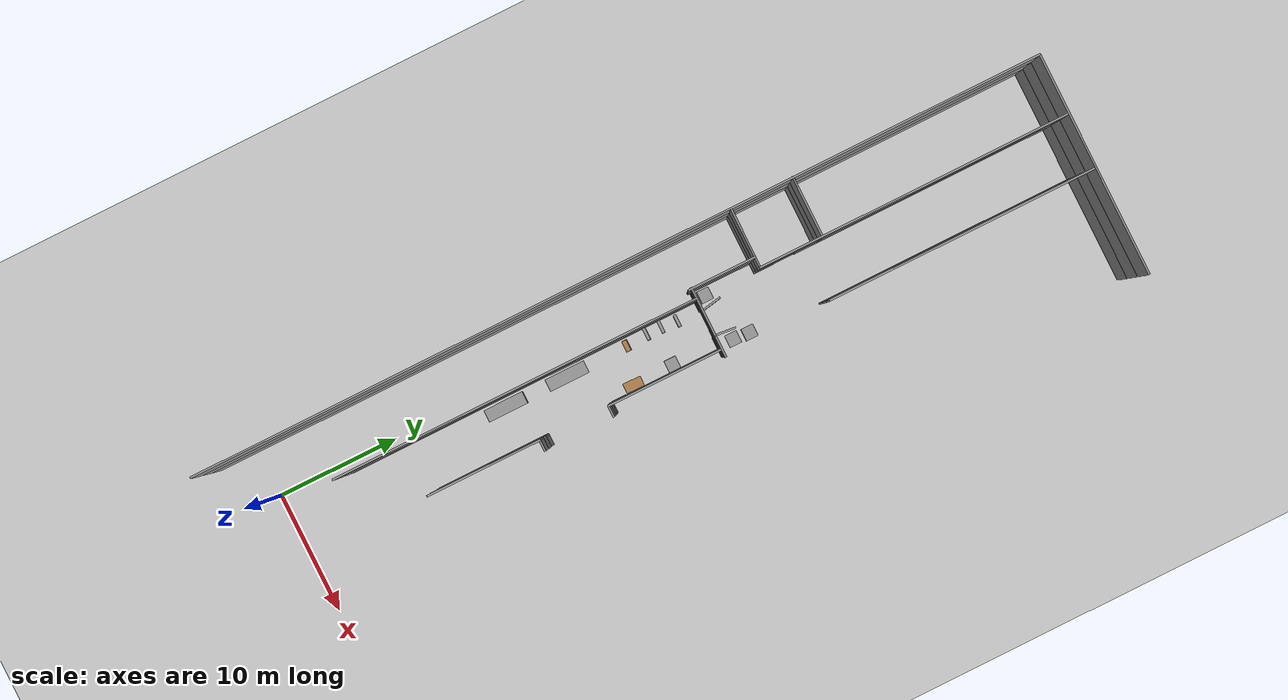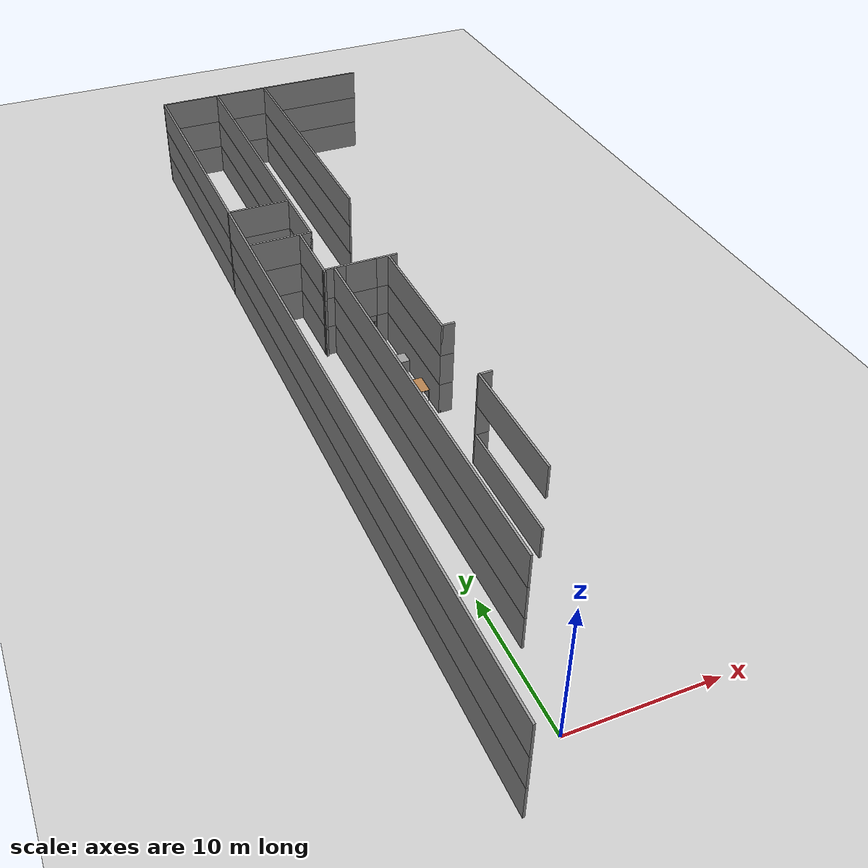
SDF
<sdf version="1.7">
 <world name="default">
  <model name="ground_plane">
   <pose>30 30 0 0 -0 0</pose>
   <static>1</static>
   <link name="link">
    <collision name="collision">
     <geometry><plane><normal>0 0 1</normal><size>100 100</size></plane></geometry>
     <surface><friction><ode><mu>100</mu><mu2>50</mu2></ode></friction></surface>
    </collision>
    <visual name="visual">
     <cast_shadows>0</cast_shadows>
     <geometry><plane><normal>0 0 1</normal><size>100 100</size></plane></geometry>
     <material>
      <script><uri>file://media/materials/scripts/gazebo.material</uri><name>Gazebo/Grey</name></script>
     </material>
    </visual>
   </link>
  </model>
  <model name="Soterrani_AT">
   <pose>30.7763 24.7178 0 0 0 -1.57187</pose>
   <link name="Wall_1">
    <collision name="Wall_1_Collision">
     <geometry><box><size>69.25 0.15 2.5</size></box></geometry>
     <pose>0 0 1.25 0 -0 0</pose>
    </collision>
    <visual name="Wall_1_Visual">
     <pose>0 0 1.25 0 -0 0</pose>
     <geometry><box><size>69.25 0.15 2.5</size></box></geometry>
     <material>
      <script><uri>file://media/materials/scripts/gazebo.material</uri><name>Gazebo/Grey</name></script>
      <ambient>1 1 1 1</ambient>
     </material>
     <meta><layer>0</layer></meta>
    </visual>
    <pose>-6.55126 -34.6495 0 0 -0 3.14159</pose>
   </link>
   <link name="Wall_11">
    <collision name="Wall_11_Collision">
     <geometry><box><size>1 0.15 2.5</size></box></geometry>
     <pose>0 0 1.25 0 -0 0</pose>
    </collision>
    <visual name="Wall_11_Visual">
     <pose>0 0 1.25 0 -0 0</pose>
     <geometry><box><size>1 0.15 2.5</size></box></geometry>
     <material>
      <script><uri>file://media/materials/scripts/gazebo.material</uri><name>Gazebo/Grey</name></script>
      <ambient>1 1 1 1</ambient>
     </material>
     <meta><layer>0</layer></meta>
    </visual>
    <pose>4.04874 -25.3245 0 0 -0 1.5708</pose>
   </link>
   <link name="Wall_13">
    <collision name="Wall_13_Collision">
     <geometry><box><size>1 0.15 2.5</size></box></geometry>
     <pose>0 0 1.25 0 -0 0</pose>
    </collision>
    <visual name="Wall_13_Visual">
     <pose>0 0 1.25 0 -0 0</pose>
     <geometry><box><size>1 0.15 2.5</size></box></geometry>
     <material>
      <script><uri>file://media/materials/scripts/gazebo.material</uri><name>Gazebo/Grey</name></script>
      <ambient>1 1 1 1</ambient>
     </material>
     <meta><layer>0</layer></meta>
    </visual>
    <pose>-1.55126 -25.3245 0 0 -0 -1.5708</pose>
   </link>
   <link name="Wall_14">
    <collision name="Wall_14_Collision">
     <geometry><box><size>9.25 0.15 2.5</size></box></geometry>
     <pose>0 0 1.25 0 -0 0</pose>
    </collision>
    <visual name="Wall_14_Visual">
     <pose>0 0 1.25 0 -0 0</pose>
     <geometry><box><size>9.25 0.15 2.5</size></box></geometry>
     <material>
      <script><uri>file://media/materials/scripts/gazebo.material</uri><name>Gazebo/Grey</name></script>
      <ambient>1 1 1 1</ambient>
     </material>
     <meta><layer>0</layer></meta>
    </visual>
    <pose>-6.10126 -25.7495 0 0 -0 3.14159</pose>
   </link>
   <link name="Wall_149">
    <collision name="Wall_149_Collision">
     <geometry><box><size>69.25 0.15 2.5</size></box></geometry>
     <pose>0 0 1.25 0 -0 0</pose>
    </collision>
    <visual name="Wall_149_Visual">
     <pose>0 0 1.25 0 -0 0</pose>
     <geometry><box><size>69.25 0.15 2.5</size></box></geometry>
     <material>
      <script><uri>file://media/materials/scripts/gazebo.material</uri><name>Gazebo/Grey</name></script>
      <ambient>1 1 1 1</ambient>
     </material>
     <meta><layer>1</layer></meta>
    </visual>
    <pose>-6.55126 -34.6495 2.5 0 -0 3.14159</pose>
   </link>
   <link name="Wall_150">
    <collision name="Wall_150_Collision">
     <geometry><box><size>18 0.15 2.5</size></box></geometry>
     <pose>0 0 1.25 0 -0 0</pose>
    </collision>
    <visual name="Wall_150_Visual">
     <pose>0 0 1.25 0 -0 0</pose>
     <geometry><box><size>18 0.15 2.5</size></box></geometry>
     <material>
      <script><uri>file://media/materials/scripts/gazebo.material</uri><name>Gazebo/Grey</name></script>
      <ambient>1 1 1 1</ambient>
     </material>
     <meta><layer>1</layer></meta>
    </visual>
    <pose>-41.1013 -25.7245 2.5 0 -0 1.5708</pose>
   </link>
   <link name="Wall_156">
    <collision name="Wall_156_Collision">
     <geometry><box><size>1 0.15 2.5</size></box></geometry>
     <pose>0 0 1.25 0 -0 0</pose>
    </collision>
    <visual name="Wall_156_Visual">
     <pose>0 0 1.25 0 -0 0</pose>
     <geometry><box><size>1 0.15 2.5</size></box></geometry>
     <material>
      <script><uri>file://media/materials/scripts/gazebo.material</uri><name>Gazebo/Grey</name></script>
      <ambient>1 1 1 1</ambient>
     </material>
     <meta><layer>1</layer></meta>
    </visual>
    <pose>4.04874 -25.3245 2.5 0 -0 1.5708</pose>
   </link>
   <link name="Wall_158">
    <collision name="Wall_158_Collision">
     <geometry><box><size>1 0.15 2.5</size></box></geometry>
     <pose>0 0 1.25 0 -0 0</pose>
    </collision>
    <visual name="Wall_158_Visual">
     <pose>0 0 1.25 0 -0 0</pose>
     <geometry><box><size>1 0.15 2.5</size></box></geometry>
     <material>
      <script><uri>file://media/materials/scripts/gazebo.material</uri><name>Gazebo/Grey</name></script>
      <ambient>1 1 1 1</ambient>
     </material>
     <meta><layer>1</layer></meta>
    </visual>
    <pose>-1.55126 -25.3245 2.5 0 -0 -1.5708</pose>
   </link>
   <link name="Wall_159">
    <collision name="Wall_159_Collision">
     <geometry><box><size>9.25 0.15 2.5</size></box></geometry>
     <pose>0 0 1.25 0 -0 0</pose>
    </collision>
    <visual name="Wall_159_Visual">
     <pose>0 0 1.25 0 -0 0</pose>
     <geometry><box><size>9.25 0.15 2.5</size></box></geometry>
     <material>
      <script><uri>file://media/materials/scripts/gazebo.material</uri><name>Gazebo/Grey</name></script>
      <ambient>1 1 1 1</ambient>
     </material>
     <meta><layer>1</layer></meta>
    </visual>
    <pose>-6.10126 -25.7495 2.5 0 -0 3.14159</pose>
   </link>
   <link name="Wall_166">
    <collision name="Wall_166_Collision">
     <geometry><box><size>21.75 0.15 2.5</size></box></geometry>
     <pose>0 0 1.25 0 -0 0</pose>
    </collision>
    <visual name="Wall_166_Visual">
     <pose>0 0 1.25 0 -0 0</pose>
     <geometry><box><size>21.75 0.15 2.5</size></box></geometry>
     <material>
      <script><uri>file://media/materials/scripts/gazebo.material</uri><name>Gazebo/Grey</name></script>
      <ambient>1 1 1 1</ambient>
     </material>
     <meta><layer>1</layer></meta>
    </visual>
    <pose>-30.2847 -25.4328 2.5 0 -0 3.14159</pose>
   </link>
   <link name="Wall_167">
    <collision name="Wall_167_Collision">
     <geometry><box><size>25.25 0.15 2.5</size></box></geometry>
     <pose>0 0 1.25 0 -0 0</pose>
    </collision>
    <visual name="Wall_167_Visual">
     <pose>0 0 1.25 0 -0 0</pose>
     <geometry><box><size>25.25 0.15 2.5</size></box></geometry>
     <material>
      <script><uri>file://media/materials/scripts/gazebo.material</uri><name>Gazebo/Grey</name></script>
      <ambient>1 1 1 1</ambient>
     </material>
     <meta><layer>1</layer></meta>
    </visual>
    <pose>-28.4987 -29.8428 2.5 0 -0 0</pose>
   </link>
   <link name="Wall_168">
    <collision name="Wall_168_Collision">
     <geometry><box><size>1 0.15 2.5</size></box></geometry>
     <pose>0 0 1.25 0 -0 0</pose>
    </collision>
    <visual name="Wall_168_Visual">
     <pose>0 0 1.25 0 -0 0</pose>
     <geometry><box><size>1 0.15 2.5</size></box></geometry>
     <material>
      <script><uri>file://media/materials/scripts/gazebo.material</uri><name>Gazebo/Grey</name></script>
      <ambient>1 1 1 1</ambient>
     </material>
     <meta><layer>1</layer></meta>
    </visual>
    <pose>-15.9487 -30.2678 2.5 0 -0 -1.5708</pose>
   </link>
   <link name="Wall_169">
    <collision name="Wall_169_Collision">
     <geometry><box><size>5.5 0.15 2.5</size></box></geometry>
     <pose>0 0 1.25 0 -0 0</pose>
    </collision>
    <visual name="Wall_169_Visual">
     <pose>0 0 1.25 0 -0 0</pose>
     <geometry><box><size>5.5 0.15 2.5</size></box></geometry>
     <material>
      <script><uri>file://media/materials/scripts/gazebo.material</uri><name>Gazebo/Grey</name></script>
      <ambient>1 1 1 1</ambient>
     </material>
     <meta><layer>1</layer></meta>
    </visual>
    <pose>-13.2737 -30.6928 2.5 0 -0 0</pose>
   </link>
   <link name="Wall_170">
    <collision name="Wall_170_Collision">
     <geometry><box><size>1.75 0.15 2.5</size></box></geometry>
     <pose>0 0 1.25 0 -0 0</pose>
    </collision>
    <visual name="Wall_170_Visual">
     <pose>0 0 1.25 0 -0 0</pose>
     <geometry><box><size>1.75 0.15 2.5</size></box></geometry>
     <material>
      <script><uri>file://media/materials/scripts/gazebo.material</uri><name>Gazebo/Grey</name></script>
      <ambient>1 1 1 1</ambient>
     </material>
     <meta><layer>1</layer></meta>
    </visual>
    <pose>-10.8066 -25.9699 2.5 0 -0 -1.5708</pose>
   </link>
   <link name="Wall_171">
    <collision name="Wall_171_Collision">
     <geometry><box><size>2.5 0.15 2.5</size></box></geometry>
     <pose>0 0 1.25 0 -0 0</pose>
    </collision>
    <visual name="Wall_171_Visual">
     <pose>0 0 1.25 0 -0 0</pose>
     <geometry><box><size>2.5 0.15 2.5</size></box></geometry>
     <material>
      <script><uri>file://media/materials/scripts/gazebo.material</uri><name>Gazebo/Grey</name></script>
      <ambient>1 1 1 1</ambient>
     </material>
     <meta><layer>1</layer></meta>
    </visual>
    <pose>-10.8066 -27.9449 2.5 0 -0 -1.5708</pose>
   </link>
   <link name="Wall_172">
    <collision name="Wall_172_Collision">
     <geometry><box><size>1.75 0.15 2.5</size></box></geometry>
     <pose>0 0 1.25 0 -0 0</pose>
    </collision>
    <visual name="Wall_172_Visual">
     <pose>0 0 1.25 0 -0 0</pose>
     <geometry><box><size>1.75 0.15 2.5</size></box></geometry>
     <material>
      <script><uri>file://media/materials/scripts/gazebo.material</uri><name>Gazebo/Grey</name></script>
      <ambient>1 1 1 1</ambient>
     </material>
     <meta><layer>1</layer></meta>
    </visual>
    <pose>-10.8066 -29.9199 2.5 0 -0 -1.5708</pose>
   </link>
   <link name="Wall_173">
    <collision name="Wall_173_Collision">
     <geometry><box><size>29.75 0.15 2.5</size></box></geometry>
     <pose>0 0 1.25 0 -0 0</pose>
    </collision>
    <visual name="Wall_173_Visual">
     <pose>0 0 1.25 0 -0 0</pose>
     <geometry><box><size>29.75 0.15 2.5</size></box></geometry>
     <material>
      <script><uri>file://media/materials/scripts/gazebo.material</uri><name>Gazebo/Grey</name></script>
      <ambient>1 1 1 1</ambient>
     </material>
     <meta><layer>1</layer></meta>
    </visual>
    <pose>3.99345 -29.8968 2.5 0 -0 0</pose>
   </link>
   <link name="Wall_180">
    <collision name="Wall_180_Collision">
     <geometry><box><size>5 0.15 2.5</size></box></geometry>
     <pose>0 0 1.25 0 -0 0</pose>
    </collision>
    <visual name="Wall_180_Visual">
     <pose>0 0 1.25 0 -0 0</pose>
     <geometry><box><size>5 0.15 2.5</size></box></geometry>
     <material>
      <script><uri>file://media/materials/scripts/gazebo.material</uri><name>Gazebo/Grey</name></script>
      <ambient>1 1 1 1</ambient>
     </material>
     <meta><layer>1</layer></meta>
    </visual>
    <pose>-21.0234 -32.245 2.5 0 -0 -1.5708</pose>
   </link>
   <link name="Wall_181">
    <collision name="Wall_181_Collision">
     <geometry><box><size>4 0.15 2.5</size></box></geometry>
     <pose>0 0 1.25 0 -0 0</pose>
    </collision>
    <visual name="Wall_181_Visual">
     <pose>0 0 1.25 0 -0 0</pose>
     <geometry><box><size>4 0.15 2.5</size></box></geometry>
     <material>
      <script><uri>file://media/materials/scripts/gazebo.material</uri><name>Gazebo/Grey</name></script>
      <ambient>1 1 1 1</ambient>
     </material>
     <meta><layer>1</layer></meta>
    </visual>
    <pose>-15.9487 -32.6178 2.5 0 -0 -1.5708</pose>
   </link>
   <link name="Wall_2">
    <collision name="Wall_2_Collision">
     <geometry><box><size>18 0.15 2.5</size></box></geometry>
     <pose>0 0 1.25 0 -0 0</pose>
    </collision>
    <visual name="Wall_2_Visual">
     <pose>0 0 1.25 0 -0 0</pose>
     <geometry><box><size>18 0.15 2.5</size></box></geometry>
     <material>
      <script><uri>file://media/materials/scripts/gazebo.material</uri><name>Gazebo/Grey</name></script>
      <ambient>1 1 1 1</ambient>
     </material>
     <meta><layer>0</layer></meta>
    </visual>
    <pose>-41.1013 -25.7245 0 0 -0 1.5708</pose>
   </link>
   <link name="Wall_220">
    <collision name="Wall_220_Collision">
     <geometry><box><size>69.25 0.15 2.5</size></box></geometry>
     <pose>0 0 1.25 0 -0 0</pose>
    </collision>
    <visual name="Wall_220_Visual">
     <pose>0 0 1.25 0 -0 0</pose>
     <geometry><box><size>69.25 0.15 2.5</size></box></geometry>
     <material>
      <script><uri>file://media/materials/scripts/gazebo.material</uri><name>Gazebo/Grey</name></script>
      <ambient>1 1 1 1</ambient>
     </material>
     <meta><layer>2</layer></meta>
    </visual>
    <pose>-6.55126 -34.6495 5 0 -0 3.14159</pose>
   </link>
   <link name="Wall_221">
    <collision name="Wall_221_Collision">
     <geometry><box><size>18 0.15 2.5</size></box></geometry>
     <pose>0 0 1.25 0 -0 0</pose>
    </collision>
    <visual name="Wall_221_Visual">
     <pose>0 0 1.25 0 -0 0</pose>
     <geometry><box><size>18 0.15 2.5</size></box></geometry>
     <material>
      <script><uri>file://media/materials/scripts/gazebo.material</uri><name>Gazebo/Grey</name></script>
      <ambient>1 1 1 1</ambient>
     </material>
     <meta><layer>2</layer></meta>
    </visual>
    <pose>-41.1013 -25.7245 5 0 -0 1.5708</pose>
   </link>
   <link name="Wall_226">
    <collision name="Wall_226_Collision">
     <geometry><box><size>9.25 0.15 2.5</size></box></geometry>
     <pose>0 0 1.25 0 -0 0</pose>
    </collision>
    <visual name="Wall_226_Visual">
     <pose>0 0 1.25 0 -0 0</pose>
     <geometry><box><size>9.25 0.15 2.5</size></box></geometry>
     <material>
      <script><uri>file://media/materials/scripts/gazebo.material</uri><name>Gazebo/Grey</name></script>
      <ambient>1 1 1 1</ambient>
     </material>
     <meta><layer>2</layer></meta>
    </visual>
    <pose>8.59874 -25.7495 5 0 -0 3.14159</pose>
   </link>
   <link name="Wall_227">
    <collision name="Wall_227_Collision">
     <geometry><box><size>1 0.15 2.5</size></box></geometry>
     <pose>0 0 1.25 0 -0 0</pose>
    </collision>
    <visual name="Wall_227_Visual">
     <pose>0 0 1.25 0 -0 0</pose>
     <geometry><box><size>1 0.15 2.5</size></box></geometry>
     <material>
      <script><uri>file://media/materials/scripts/gazebo.material</uri><name>Gazebo/Grey</name></script>
      <ambient>1 1 1 1</ambient>
     </material>
     <meta><layer>2</layer></meta>
    </visual>
    <pose>4.04874 -25.3245 5 0 -0 1.5708</pose>
   </link>
   <link name="Wall_229">
    <collision name="Wall_229_Collision">
     <geometry><box><size>1 0.15 2.5</size></box></geometry>
     <pose>0 0 1.25 0 -0 0</pose>
    </collision>
    <visual name="Wall_229_Visual">
     <pose>0 0 1.25 0 -0 0</pose>
     <geometry><box><size>1 0.15 2.5</size></box></geometry>
     <material>
      <script><uri>file://media/materials/scripts/gazebo.material</uri><name>Gazebo/Grey</name></script>
      <ambient>1 1 1 1</ambient>
     </material>
     <meta><layer>2</layer></meta>
    </visual>
    <pose>-1.55126 -25.3245 5 0 -0 -1.5708</pose>
   </link>
   <link name="Wall_230">
    <collision name="Wall_230_Collision">
     <geometry><box><size>9.25 0.15 2.5</size></box></geometry>
     <pose>0 0 1.25 0 -0 0</pose>
    </collision>
    <visual name="Wall_230_Visual">
     <pose>0 0 1.25 0 -0 0</pose>
     <geometry><box><size>9.25 0.15 2.5</size></box></geometry>
     <material>
      <script><uri>file://media/materials/scripts/gazebo.material</uri><name>Gazebo/Grey</name></script>
      <ambient>1 1 1 1</ambient>
     </material>
     <meta><layer>2</layer></meta>
    </visual>
    <pose>-6.10126 -25.7495 5 0 -0 3.14159</pose>
   </link>
   <link name="Wall_237">
    <collision name="Wall_237_Collision">
     <geometry><box><size>21.75 0.15 2.5</size></box></geometry>
     <pose>0 0 1.25 0 -0 0</pose>
    </collision>
    <visual name="Wall_237_Visual">
     <pose>0 0 1.25 0 -0 0</pose>
     <geometry><box><size>21.75 0.15 2.5</size></box></geometry>
     <material>
      <script><uri>file://media/materials/scripts/gazebo.material</uri><name>Gazebo/Grey</name></script>
      <ambient>1 1 1 1</ambient>
     </material>
     <meta><layer>2</layer></meta>
    </visual>
    <pose>-30.2847 -25.4328 5 0 -0 3.14159</pose>
   </link>
   <link name="Wall_238">
    <collision name="Wall_238_Collision">
     <geometry><box><size>25.25 0.15 2.5</size></box></geometry>
     <pose>0 0 1.25 0 -0 0</pose>
    </collision>
    <visual name="Wall_238_Visual">
     <pose>0 0 1.25 0 -0 0</pose>
     <geometry><box><size>25.25 0.15 2.5</size></box></geometry>
     <material>
      <script><uri>file://media/materials/scripts/gazebo.material</uri><name>Gazebo/Grey</name></script>
      <ambient>1 1 1 1</ambient>
     </material>
     <meta><layer>2</layer></meta>
    </visual>
    <pose>-28.4987 -29.8428 5 0 -0 0</pose>
   </link>
   <link name="Wall_239">
    <collision name="Wall_239_Collision">
     <geometry><box><size>1 0.15 2.5</size></box></geometry>
     <pose>0 0 1.25 0 -0 0</pose>
    </collision>
    <visual name="Wall_239_Visual">
     <pose>0 0 1.25 0 -0 0</pose>
     <geometry><box><size>1 0.15 2.5</size></box></geometry>
     <material>
      <script><uri>file://media/materials/scripts/gazebo.material</uri><name>Gazebo/Grey</name></script>
      <ambient>1 1 1 1</ambient>
     </material>
     <meta><layer>2</layer></meta>
    </visual>
    <pose>-15.9487 -30.2678 5 0 -0 -1.5708</pose>
   </link>
   <link name="Wall_24">
    <collision name="Wall_24_Collision">
     <geometry><box><size>21.75 0.15 2.5</size></box></geometry>
     <pose>0 0 1.25 0 -0 0</pose>
    </collision>
    <visual name="Wall_24_Visual">
     <pose>0 0 1.25 0 -0 0</pose>
     <geometry><box><size>21.75 0.15 2.5</size></box></geometry>
     <material>
      <script><uri>file://media/materials/scripts/gazebo.material</uri><name>Gazebo/Grey</name></script>
      <ambient>1 1 1 1</ambient>
     </material>
     <meta><layer>0</layer></meta>
    </visual>
    <pose>-30.2847 -25.4328 0 0 -0 3.14159</pose>
   </link>
   <link name="Wall_240">
    <collision name="Wall_240_Collision">
     <geometry><box><size>5.5 0.15 2.5</size></box></geometry>
     <pose>0 0 1.25 0 -0 0</pose>
    </collision>
    <visual name="Wall_240_Visual">
     <pose>0 0 1.25 0 -0 0</pose>
     <geometry><box><size>5.5 0.15 2.5</size></box></geometry>
     <material>
      <script><uri>file://media/materials/scripts/gazebo.material</uri><name>Gazebo/Grey</name></script>
      <ambient>1 1 1 1</ambient>
     </material>
     <meta><layer>2</layer></meta>
    </visual>
    <pose>-13.2737 -30.6928 5 0 -0 0</pose>
   </link>
   <link name="Wall_241">
    <collision name="Wall_241_Collision">
     <geometry><box><size>1.75 0.15 2.5</size></box></geometry>
     <pose>0 0 1.25 0 -0 0</pose>
    </collision>
    <visual name="Wall_241_Visual">
     <pose>0 0 1.25 0 -0 0</pose>
     <geometry><box><size>1.75 0.15 2.5</size></box></geometry>
     <material>
      <script><uri>file://media/materials/scripts/gazebo.material</uri><name>Gazebo/Grey</name></script>
      <ambient>1 1 1 1</ambient>
     </material>
     <meta><layer>2</layer></meta>
    </visual>
    <pose>-10.8066 -25.9699 5 0 -0 -1.5708</pose>
   </link>
   <link name="Wall_242">
    <collision name="Wall_242_Collision">
     <geometry><box><size>2.5 0.15 2.5</size></box></geometry>
     <pose>0 0 1.25 0 -0 0</pose>
    </collision>
    <visual name="Wall_242_Visual">
     <pose>0 0 1.25 0 -0 0</pose>
     <geometry><box><size>2.5 0.15 2.5</size></box></geometry>
     <material>
      <script><uri>file://media/materials/scripts/gazebo.material</uri><name>Gazebo/Grey</name></script>
      <ambient>1 1 1 1</ambient>
     </material>
     <meta><layer>2</layer></meta>
    </visual>
    <pose>-10.8066 -27.9449 5 0 -0 -1.5708</pose>
   </link>
   <link name="Wall_243">
    <collision name="Wall_243_Collision">
     <geometry><box><size>1.75 0.15 2.5</size></box></geometry>
     <pose>0 0 1.25 0 -0 0</pose>
    </collision>
    <visual name="Wall_243_Visual">
     <pose>0 0 1.25 0 -0 0</pose>
     <geometry><box><size>1.75 0.15 2.5</size></box></geometry>
     <material>
      <script><uri>file://media/materials/scripts/gazebo.material</uri><name>Gazebo/Grey</name></script>
      <ambient>1 1 1 1</ambient>
     </material>
     <meta><layer>2</layer></meta>
    </visual>
    <pose>-10.8066 -29.9199 5 0 -0 -1.5708</pose>
   </link>
   <link name="Wall_244">
    <collision name="Wall_244_Collision">
     <geometry><box><size>29.75 0.15 2.5</size></box></geometry>
     <pose>0 0 1.25 0 -0 0</pose>
    </collision>
    <visual name="Wall_244_Visual">
     <pose>0 0 1.25 0 -0 0</pose>
     <geometry><box><size>29.75 0.15 2.5</size></box></geometry>
     <material>
      <script><uri>file://media/materials/scripts/gazebo.material</uri><name>Gazebo/Grey</name></script>
      <ambient>1 1 1 1</ambient>
     </material>
     <meta><layer>2</layer></meta>
    </visual>
    <pose>3.99345 -29.8968 5 0 -0 0</pose>
   </link>
   <link name="Wall_250">
    <collision name="Wall_250_Collision">
     <geometry><box><size>5 0.15 2.5</size></box></geometry>
     <pose>0 0 1.25 0 -0 0</pose>
    </collision>
    <visual name="Wall_250_Visual">
     <pose>0 0 1.25 0 -0 0</pose>
     <geometry><box><size>5 0.15 2.5</size></box></geometry>
     <material>
      <script><uri>file://media/materials/scripts/gazebo.material</uri><name>Gazebo/Grey</name></script>
      <ambient>1 1 1 1</ambient>
     </material>
     <meta><layer>2</layer></meta>
    </visual>
    <pose>-21.0234 -32.245 5 0 -0 -1.5708</pose>
   </link>
   <link name="Wall_251">
    <collision name="Wall_251_Collision">
     <geometry><box><size>4 0.15 2.5</size></box></geometry>
     <pose>0 0 1.25 0 -0 0</pose>
    </collision>
    <visual name="Wall_251_Visual">
     <pose>0 0 1.25 0 -0 0</pose>
     <geometry><box><size>4 0.15 2.5</size></box></geometry>
     <material>
      <script><uri>file://media/materials/scripts/gazebo.material</uri><name>Gazebo/Grey</name></script>
      <ambient>1 1 1 1</ambient>
     </material>
     <meta><layer>2</layer></meta>
    </visual>
    <pose>-15.9487 -32.6178 5 0 -0 -1.5708</pose>
   </link>
   <link name="Wall_26">
    <pose>-28.4987 -29.8428 0 0 -0 0</pose>
    <visual name="Wall_26_Visual_0">
     <pose>-1.71901 0 1.25 0 -0 0</pose>
     <geometry><box><size>21.812 0.15 2.5</size></box></geometry>
     <material>
      <script><uri>file://media/materials/scripts/gazebo.material</uri><name>Gazebo/Grey</name></script>
      <ambient>1 1 1 1</ambient>
     </material>
     <meta><layer>0</layer></meta>
    </visual>
    <collision name="Wall_26_Collision_0">
     <geometry><box><size>21.812 0.15 2.5</size></box></geometry>
     <pose>-1.71901 0 1.25 0 -0 0</pose>
    </collision>
    <visual name="Wall_26_Visual_1">
     <pose>11.806 0 1.25 0 -0 0</pose>
     <geometry><box><size>1.63803 0.15 2.5</size></box></geometry>
     <material>
      <script><uri>file://media/materials/scripts/gazebo.material</uri><name>Gazebo/Grey</name></script>
      <ambient>1 1 1 1</ambient>
     </material>
     <meta><layer>0</layer></meta>
    </visual>
    <collision name="Wall_26_Collision_1">
     <geometry><box><size>1.63803 0.15 2.5</size></box></geometry>
     <pose>11.806 0 1.25 0 -0 0</pose>
    </collision>
    <visual name="Wall_26_Visual_2">
     <pose>10.087 0 2.25 0 -0 0</pose>
     <geometry><box><size>1.8 0.15 0.5</size></box></geometry>
     <material>
      <script><uri>file://media/materials/scripts/gazebo.material</uri><name>Gazebo/Grey</name></script>
      <ambient>1 1 1 1</ambient>
     </material>
     <meta><layer>0</layer></meta>
    </visual>
    <collision name="Wall_26_Collision_2">
     <geometry><box><size>1.8 0.15 0.5</size></box></geometry>
     <pose>10.087 0 2.25 0 -0 0</pose>
    </collision>
   </link>
   <link name="Wall_27">
    <collision name="Wall_27_Collision">
     <geometry><box><size>1 0.15 2.5</size></box></geometry>
     <pose>0 0 1.25 0 -0 0</pose>
    </collision>
    <visual name="Wall_27_Visual">
     <pose>0 0 1.25 0 -0 0</pose>
     <geometry><box><size>1 0.15 2.5</size></box></geometry>
     <material>
      <script><uri>file://media/materials/scripts/gazebo.material</uri><name>Gazebo/Grey</name></script>
      <ambient>1 1 1 1</ambient>
     </material>
     <meta><layer>0</layer></meta>
    </visual>
    <pose>-15.9487 -30.2678 0 0 -0 -1.5708</pose>
   </link>
   <link name="Wall_28">
    <collision name="Wall_28_Collision">
     <geometry><box><size>5.5 0.15 2.5</size></box></geometry>
     <pose>0 0 1.25 0 -0 0</pose>
    </collision>
    <visual name="Wall_28_Visual">
     <pose>0 0 1.25 0 -0 0</pose>
     <geometry><box><size>5.5 0.15 2.5</size></box></geometry>
     <material>
      <script><uri>file://media/materials/scripts/gazebo.material</uri><name>Gazebo/Grey</name></script>
      <ambient>1 1 1 1</ambient>
     </material>
     <meta><layer>0</layer></meta>
    </visual>
    <pose>-13.2737 -30.6928 0 0 -0 0</pose>
   </link>
   <link name="Wall_30">
    <collision name="Wall_30_Collision">
     <geometry><box><size>1.75 0.15 2.5</size></box></geometry>
     <pose>0 0 1.25 0 -0 0</pose>
    </collision>
    <visual name="Wall_30_Visual">
     <pose>0 0 1.25 0 -0 0</pose>
     <geometry><box><size>1.75 0.15 2.5</size></box></geometry>
     <material>
      <script><uri>file://media/materials/scripts/gazebo.material</uri><name>Gazebo/Grey</name></script>
      <ambient>1 1 1 1</ambient>
     </material>
     <meta><layer>0</layer></meta>
    </visual>
    <pose>-10.8066 -25.9699 0 0 -0 -1.5708</pose>
   </link>
   <link name="Wall_31">
    <pose>-10.8066 -27.9449 0 0 -0 -1.5708</pose>
    <visual name="Wall_31_Visual_0">
     <pose>-1.21908 0 1.25 0 -0 0</pose>
     <geometry><box><size>0.061834 0.15 2.5</size></box></geometry>
     <material>
      <script><uri>file://media/materials/scripts/gazebo.material</uri><name>Gazebo/Grey</name></script>
      <ambient>1 1 1 1</ambient>
     </material>
     <meta><layer>0</layer></meta>
    </visual>
    <collision name="Wall_31_Collision_0">
     <geometry><box><size>0.061834 0.15 2.5</size></box></geometry>
     <pose>-1.21908 0 1.25 0 -0 0</pose>
    </collision>
    <visual name="Wall_31_Visual_1">
     <pose>1.15559 0 1.25 0 -0 0</pose>
     <geometry><box><size>0.188829 0.15 2.5</size></box></geometry>
     <material>
      <script><uri>file://media/materials/scripts/gazebo.material</uri><name>Gazebo/Grey</name></script>
      <ambient>1 1 1 1</ambient>
     </material>
     <meta><layer>0</layer></meta>
    </visual>
    <collision name="Wall_31_Collision_1">
     <geometry><box><size>0.188829 0.15 2.5</size></box></geometry>
     <pose>1.15559 0 1.25 0 -0 0</pose>
    </collision>
    <visual name="Wall_31_Visual_2">
     <pose>-0.063498 0 2.25 0 -0 0</pose>
     <geometry><box><size>2.24934 0.15 0.5</size></box></geometry>
     <material>
      <script><uri>file://media/materials/scripts/gazebo.material</uri><name>Gazebo/Grey</name></script>
      <ambient>1 1 1 1</ambient>
     </material>
     <meta><layer>0</layer></meta>
    </visual>
    <collision name="Wall_31_Collision_2">
     <geometry><box><size>2.24934 0.15 0.5</size></box></geometry>
     <pose>-0.063498 0 2.25 0 -0 0</pose>
    </collision>
   </link>
   <link name="Wall_32">
    <collision name="Wall_32_Collision">
     <geometry><box><size>1.75 0.15 2.5</size></box></geometry>
     <pose>0 0 1.25 0 -0 0</pose>
    </collision>
    <visual name="Wall_32_Visual">
     <pose>0 0 1.25 0 -0 0</pose>
     <geometry><box><size>1.75 0.15 2.5</size></box></geometry>
     <material>
      <script><uri>file://media/materials/scripts/gazebo.material</uri><name>Gazebo/Grey</name></script>
      <ambient>1 1 1 1</ambient>
     </material>
     <meta><layer>0</layer></meta>
    </visual>
    <pose>-10.8066 -29.9199 0 0 -0 -1.5708</pose>
   </link>
   <link name="Wall_34">
    <collision name="Wall_34_Collision">
     <geometry><box><size>29.75 0.15 2.5</size></box></geometry>
     <pose>0 0 1.25 0 -0 0</pose>
    </collision>
    <visual name="Wall_34_Visual">
     <pose>0 0 1.25 0 -0 0</pose>
     <geometry><box><size>29.75 0.15 2.5</size></box></geometry>
     <material>
      <script><uri>file://media/materials/scripts/gazebo.material</uri><name>Gazebo/Grey</name></script>
      <ambient>1 1 1 1</ambient>
     </material>
     <meta><layer>0</layer></meta>
    </visual>
    <pose>3.99345 -29.8968 0 0 -0 0</pose>
   </link>
   <link name="Wall_49">
    <collision name="Wall_49_Collision">
     <geometry><box><size>5 0.15 2.5</size></box></geometry>
     <pose>0 0 1.25 0 -0 0</pose>
    </collision>
    <visual name="Wall_49_Visual">
     <pose>0 0 1.25 0 -0 0</pose>
     <geometry><box><size>5 0.15 2.5</size></box></geometry>
     <material>
      <script><uri>file://media/materials/scripts/gazebo.material</uri><name>Gazebo/Grey</name></script>
      <ambient>1 1 1 1</ambient>
     </material>
     <meta><layer>0</layer></meta>
    </visual>
    <pose>-21.0234 -32.245 0 0 -0 -1.5708</pose>
   </link>
   <link name="Wall_51">
    <collision name="Wall_51_Collision">
     <geometry><box><size>4 0.15 2.5</size></box></geometry>
     <pose>0 0 1.25 0 -0 0</pose>
    </collision>
    <visual name="Wall_51_Visual">
     <pose>0 0 1.25 0 -0 0</pose>
     <geometry><box><size>4 0.15 2.5</size></box></geometry>
     <material>
      <script><uri>file://media/materials/scripts/gazebo.material</uri><name>Gazebo/Grey</name></script>
      <ambient>1 1 1 1</ambient>
     </material>
     <meta><layer>0</layer></meta>
    </visual>
    <pose>-15.9487 -32.6178 0 0 -0 -1.5708</pose>
   </link>
   <link name="Wall_7">
    <collision name="Wall_7_Collision">
     <geometry><box><size>9.25 0.15 2.5</size></box></geometry>
     <pose>0 0 1.25 0 -0 0</pose>
    </collision>
    <visual name="Wall_7_Visual">
     <pose>0 0 1.25 0 -0 0</pose>
     <geometry><box><size>9.25 0.15 2.5</size></box></geometry>
     <material>
      <script><uri>file://media/materials/scripts/gazebo.material</uri><name>Gazebo/Grey</name></script>
      <ambient>1 1 1 1</ambient>
     </material>
     <meta><layer>0</layer></meta>
    </visual>
    <pose>8.59874 -25.7495 0 0 -0 3.14159</pose>
   </link>
   <static>1</static>
  </model>
  <model name="unit_box_clone_clone_0">
   <pose>1.62594 18.7435 0.17935 0 9e-06 0.002257</pose>
   <link name="link">
    <inertial>
     <mass>1</mass>
     <inertia>
      <ixx>0.166667</ixx>
      <ixy>0</ixy>
      <ixz>0</ixz>
      <iyy>0.166667</iyy>
      <iyz>0</iyz>
      <izz>0.166667</izz>
     </inertia>
    </inertial>
    <collision name="collision"><geometry><box><size>1 3.34246 0.35871</size></box></geometry></collision>
    <visual name="visual">
     <geometry><box><size>1 3.34246 0.35871</size></box></geometry>
     <material>
      <script><name>Gazebo/Grey</name><uri>file://media/materials/scripts/gazebo.material</uri></script>
     </material>
    </visual>
   </link>
  </model>
  <model name="unit_box_clone_clone_0_clone">
   <pose>1.62153 24.058 0.103751 0 -1e-05 -3.9e-05</pose>
   <link name="link">
    <inertial>
     <mass>1</mass>
     <inertia>
      <ixx>0.166667</ixx>
      <ixy>0</ixy>
      <ixz>0</ixz>
      <iyy>0.166667</iyy>
      <iyz>0</iyz>
      <izz>0.166667</izz>
     </inertia>
    </inertial>
    <collision name="collision"><geometry><box><size>1 3.34246 0.207512</size></box></geometry></collision>
    <visual name="visual">
     <geometry><box><size>1 3.34246 0.207512</size></box></geometry>
     <material>
      <script><name>Gazebo/Grey</name><uri>file://media/materials/scripts/gazebo.material</uri></script>
     </material>
    </visual>
   </link>
  </model>
  <model name="table">
   <static>1</static>
   <link name="link">
    <collision name="surface">
     <pose>0 0 1 0 -0 0</pose>
     <geometry><box><size>1.5 0.8 0.03</size></box></geometry>
     <surface><friction><ode><mu>0.6</mu><mu2>0.6</mu2></ode></friction></surface>
    </collision>
    <visual name="visual1">
     <pose>0 0 1 0 -0 0</pose>
     <geometry><box><size>1.5 0.8 0.03</size></box></geometry>
     <material>
      <script><uri>file://media/materials/scripts/gazebo.material</uri><name>Gazebo/Wood</name></script>
     </material>
    </visual>
    <collision name="front_left_leg">
     <pose>0.68 0.38 0.5 0 -0 0</pose>
     <geometry><cylinder><radius>0.02</radius><length>1</length></cylinder></geometry>
    </collision>
    <visual name="front_left_leg">
     <pose>0.68 0.38 0.5 0 -0 0</pose>
     <geometry><cylinder><radius>0.02</radius><length>1</length></cylinder></geometry>
     <material>
      <script><uri>file://media/materials/scripts/gazebo.material</uri><name>Gazebo/Grey</name></script>
     </material>
    </visual>
    <collision name="front_right_leg">
     <pose>0.68 -0.38 0.5 0 -0 0</pose>
     <geometry><cylinder><radius>0.02</radius><length>1</length></cylinder></geometry>
    </collision>
    <visual name="front_right_leg">
     <pose>0.68 -0.38 0.5 0 -0 0</pose>
     <geometry><cylinder><radius>0.02</radius><length>1</length></cylinder></geometry>
     <material>
      <script><uri>file://media/materials/scripts/gazebo.material</uri><name>Gazebo/Grey</name></script>
     </material>
    </visual>
    <collision name="back_right_leg">
     <pose>-0.68 -0.38 0.5 0 -0 0</pose>
     <geometry><cylinder><radius>0.02</radius><length>1</length></cylinder></geometry>
    </collision>
    <visual name="back_right_leg">
     <pose>-0.68 -0.38 0.5 0 -0 0</pose>
     <geometry><cylinder><radius>0.02</radius><length>1</length></cylinder></geometry>
     <material>
      <script><uri>file://media/materials/scripts/gazebo.material</uri><name>Gazebo/Grey</name></script>
     </material>
    </visual>
    <collision name="back_left_leg">
     <pose>-0.68 0.38 0.5 0 -0 0</pose>
     <geometry><cylinder><radius>0.02</radius><length>1</length></cylinder></geometry>
    </collision>
    <visual name="back_left_leg">
     <pose>-0.68 0.38 0.5 0 -0 0</pose>
     <geometry><cylinder><radius>0.02</radius><length>1</length></cylinder></geometry>
     <material>
      <script><uri>file://media/materials/scripts/gazebo.material</uri><name>Gazebo/Grey</name></script>
     </material>
    </visual>
   </link>
   <pose>4.52049 28.4136 0 0 -0 1.55414</pose>
  </model>
  <model name="unit_box_0">
   <pose>4.45909 31.7974 0.499995 0 1e-05 -0.000459</pose>
   <link name="link">
    <inertial>
     <mass>1</mass>
     <inertia>
      <ixx>0.166667</ixx>
      <ixy>0</ixy>
      <ixz>0</ixz>
      <iyy>0.166667</iyy>
      <iyz>0</iyz>
      <izz>0.166667</izz>
     </inertia>
    </inertial>
    <collision name="collision"><geometry><box><size>1 1 1</size></box></geometry></collision>
    <visual name="visual">
     <geometry><box><size>1 1 1</size></box></geometry>
     <material>
      <script><name>Gazebo/Grey</name><uri>file://media/materials/scripts/gazebo.material</uri></script>
     </material>
    </visual>
   </link>
  </model>
  <model name="unit_box_5">
   <pose>1.47509 32.3066 1.04578 0 -0 -0.000403</pose>
   <link name="link">
    <inertial>
     <mass>1</mass>
     <inertia>
      <ixx>0.166667</ixx>
      <ixy>0</ixy>
      <ixz>0</ixz>
      <iyy>0.166667</iyy>
      <iyz>0</iyz>
      <izz>0.166667</izz>
     </inertia>
    </inertial>
    <collision name="collision"><geometry><box><size>1 0.248702 2.09156</size></box></geometry></collision>
    <visual name="visual">
     <geometry><box><size>1 0.248702 2.09156</size></box></geometry>
     <material>
      <script><name>Gazebo/Grey</name><uri>file://media/materials/scripts/gazebo.material</uri></script>
     </material>
    </visual>
   </link>
  </model>
  <model name="unit_box_5_clone">
   <pose>1.47295 31.0582 1.04577 0 -1e-06 -0.000422</pose>
   <link name="link">
    <inertial>
     <mass>1</mass>
     <inertia>
      <ixx>0.166667</ixx>
      <ixy>0</ixy>
      <ixz>0</ixz>
      <iyy>0.166667</iyy>
      <iyz>0</iyz>
      <izz>0.166667</izz>
     </inertia>
    </inertial>
    <collision name="collision"><geometry><box><size>1 0.248702 2.09156</size></box></geometry></collision>
    <visual name="visual">
     <geometry><box><size>1 0.248702 2.09156</size></box></geometry>
     <material>
      <script><name>Gazebo/Grey</name><uri>file://media/materials/scripts/gazebo.material</uri></script>
     </material>
    </visual>
   </link>
  </model>
  <model name="unit_box_5_clone_0">
   <pose>1.62296 33.6325 1.04578 0 -0 -0.000402</pose>
   <link name="link">
    <inertial>
     <mass>1</mass>
     <inertia>
      <ixx>0.166667</ixx>
      <ixy>0</ixy>
      <ixz>0</ixz>
      <iyy>0.166667</iyy>
      <iyz>0</iyz>
      <izz>0.166667</izz>
     </inertia>
    </inertial>
    <collision name="collision"><geometry><box><size>1 0.248702 2.09156</size></box></geometry></collision>
    <visual name="visual">
     <geometry><box><size>1 0.248702 2.09156</size></box></geometry>
     <material>
      <script><name>Gazebo/Grey</name><uri>file://media/materials/scripts/gazebo.material</uri></script>
     </material>
    </visual>
   </link>
  </model>
  <model name="bookshelf">
   <static>1</static>
   <link name="link">
    <inertial><mass>1</mass></inertial>
    <collision name="back">
     <pose>0 0.005 0.6 0 -0 0</pose>
     <geometry><box><size>0.9 0.01 1.2</size></box></geometry>
    </collision>
    <visual name="visual1">
     <pose>0 0.005 0.6 0 -0 0</pose>
     <geometry><box><size>0.9 0.01 1.2</size></box></geometry>
     <material>
      <script><uri>file://media/materials/scripts/gazebo.material</uri><name>Gazebo/Wood</name></script>
     </material>
    </visual>
    <collision name="left_side">
     <pose>0.45 -0.195 0.6 0 -0 0</pose>
     <geometry><box><size>0.02 0.4 1.2</size></box></geometry>
    </collision>
    <visual name="visual2">
     <pose>0.45 -0.195 0.6 0 -0 0</pose>
     <geometry><box><size>0.02 0.4 1.2</size></box></geometry>
     <material>
      <script><uri>file://media/materials/scripts/gazebo.material</uri><name>Gazebo/Wood</name></script>
     </material>
    </visual>
    <collision name="right_side">
     <pose>-0.45 -0.195 0.6 0 -0 0</pose>
     <geometry><box><size>0.02 0.4 1.2</size></box></geometry>
    </collision>
    <visual name="visual3">
     <pose>-0.45 -0.195 0.6 0 -0 0</pose>
     <geometry><box><size>0.02 0.4 1.2</size></box></geometry>
     <material>
      <script><uri>file://media/materials/scripts/gazebo.material</uri><name>Gazebo/Wood</name></script>
     </material>
    </visual>
    <collision name="bottom">
     <pose>0 -0.195 0.03 0 -0 0</pose>
     <geometry><box><size>0.88 0.4 0.06</size></box></geometry>
    </collision>
    <visual name="visual4">
     <pose>0 -0.195 0.03 0 -0 0</pose>
     <geometry><box><size>0.88 0.4 0.06</size></box></geometry>
     <material>
      <script><uri>file://media/materials/scripts/gazebo.material</uri><name>Gazebo/Wood</name></script>
     </material>
    </visual>
    <collision name="top">
     <pose>0 -0.195 1.19 0 -0 0</pose>
     <geometry><box><size>0.88 0.4 0.02</size></box></geometry>
    </collision>
    <visual name="visual5">
     <pose>0 -0.195 1.19 0 -0 0</pose>
     <geometry><box><size>0.88 0.4 0.02</size></box></geometry>
     <material>
      <script><uri>file://media/materials/scripts/gazebo.material</uri><name>Gazebo/Wood</name></script>
     </material>
    </visual>
    <collision name="low_shelf">
     <pose>0 -0.195 0.43 0 -0 0</pose>
     <geometry><box><size>0.88 0.4 0.02</size></box></geometry>
    </collision>
    <visual name="visual6">
     <pose>0 -0.195 0.43 0 -0 0</pose>
     <geometry><box><size>0.88 0.4 0.02</size></box></geometry>
     <material>
      <script><uri>file://media/materials/scripts/gazebo.material</uri><name>Gazebo/Wood</name></script>
     </material>
    </visual>
    <collision name="high_shelf">
     <pose>0 -0.195 0.8 0 -0 0</pose>
     <geometry><box><size>0.88 0.4 0.02</size></box></geometry>
    </collision>
    <visual name="visual7">
     <pose>0 -0.195 0.8 0 -0 0</pose>
     <geometry><box><size>0.88 0.4 0.02</size></box></geometry>
     <material>
      <script><uri>file://media/materials/scripts/gazebo.material</uri><name>Gazebo/Wood</name></script>
     </material>
    </visual>
   </link>
   <pose>1.58707 29.4628 0 0 -0 0</pose>
  </model>
  <model name="unit_box_7">
   <pose>0.799128 36.4709 0.319251 0 -0 0</pose>
   <link name="link">
    <inertial>
     <mass>1</mass>
     <inertia>
      <ixx>0.166667</ixx>
      <ixy>0</ixy>
      <ixz>0</ixz>
      <iyy>0.166667</iyy>
      <iyz>0</iyz>
      <izz>0.166667</izz>
     </inertia>
    </inertial>
    <collision name="collision"><geometry><box><size>1 1 0.638503</size></box></geometry></collision>
    <visual name="visual">
     <geometry><box><size>1 1 0.638503</size></box></geometry>
     <material>
      <script><name>Gazebo/Grey</name><uri>file://media/materials/scripts/gazebo.material</uri></script>
     </material>
    </visual>
   </link>
  </model>
  <model name="unit_box_8">
   <pose>1.6437 36.5412 1.00054 -2e-06 0 0.178265</pose>
   <link name="link">
    <inertial>
     <mass>1</mass>
     <inertia>
      <ixx>0.166667</ixx>
      <ixy>0</ixy>
      <ixz>0</ixz>
      <iyy>0.166667</iyy>
      <iyz>0</iyz>
      <izz>0.166667</izz>
     </inertia>
    </inertial>
    <collision name="collision"><geometry><box><size>0.152004 1.67003 2.00109</size></box></geometry></collision>
    <visual name="visual">
     <geometry><box><size>0.152004 1.67003 2.00109</size></box></geometry>
     <material>
      <script><name>Gazebo/Grey</name><uri>file://media/materials/scripts/gazebo.material</uri></script>
     </material>
    </visual>
   </link>
  </model>
  <model name="unit_box_7_clone">
   <pose>4.80873 36.8987 0.319252 0 -0 0</pose>
   <link name="link">
    <inertial>
     <mass>1</mass>
     <inertia>
      <ixx>0.166667</ixx>
      <ixy>0</ixy>
      <ixz>0</ixz>
      <iyy>0.166667</iyy>
      <iyz>0</iyz>
      <izz>0.166667</izz>
     </inertia>
    </inertial>
    <collision name="collision"><geometry><box><size>1 1 0.638504</size></box></geometry></collision>
    <visual name="visual">
     <geometry><box><size>1 1 0.638504</size></box></geometry>
     <material>
      <script><name>Gazebo/Grey</name><uri>file://media/materials/scripts/gazebo.material</uri></script>
     </material>
    </visual>
   </link>
  </model>
  <model name="unit_box_0_clone">
   <pose>4.91738 38.2509 0.499995 1e-05 -0 -0.000459</pose>
   <link name="link">
    <inertial>
     <mass>1</mass>
     <inertia>
      <ixx>0.166667</ixx>
      <ixy>0</ixy>
      <ixz>0</ixz>
      <iyy>0.166667</iyy>
      <iyz>0</iyz>
      <izz>0.166667</izz>
     </inertia>
    </inertial>
    <collision name="collision"><geometry><box><size>1 1 1</size></box></geometry></collision>
    <visual name="visual">
     <geometry><box><size>1 1 1</size></box></geometry>
     <material>
      <script><name>Gazebo/Grey</name><uri>file://media/materials/scripts/gazebo.material</uri></script>
     </material>
    </visual>
   </link>
  </model>
  <model name="unit_box_8_clone">
   <pose>4.01139 36.595 1.00055 -1e-06 -0 -0.095137</pose>
   <link name="link">
    <inertial>
     <mass>1</mass>
     <inertia>
      <ixx>0.166667</ixx>
      <ixy>0</ixy>
      <ixz>0</ixz>
      <iyy>0.166667</iyy>
      <iyz>0</iyz>
      <izz>0.166667</izz>
     </inertia>
    </inertial>
    <collision name="collision"><geometry><box><size>0.152004 1.67003 2.00109</size></box></geometry></collision>
    <visual name="visual">
     <geometry><box><size>0.152004 1.67003 2.00109</size></box></geometry>
     <material>
      <script><name>Gazebo/Grey</name><uri>file://media/materials/scripts/gazebo.material</uri></script>
     </material>
    </visual>
   </link>
  </model>
 </world>
</sdf>
